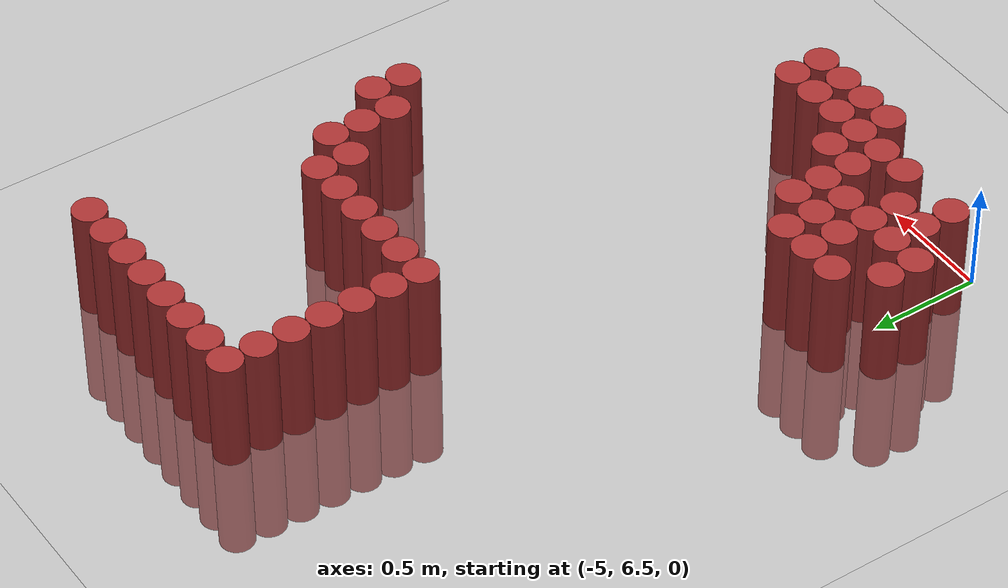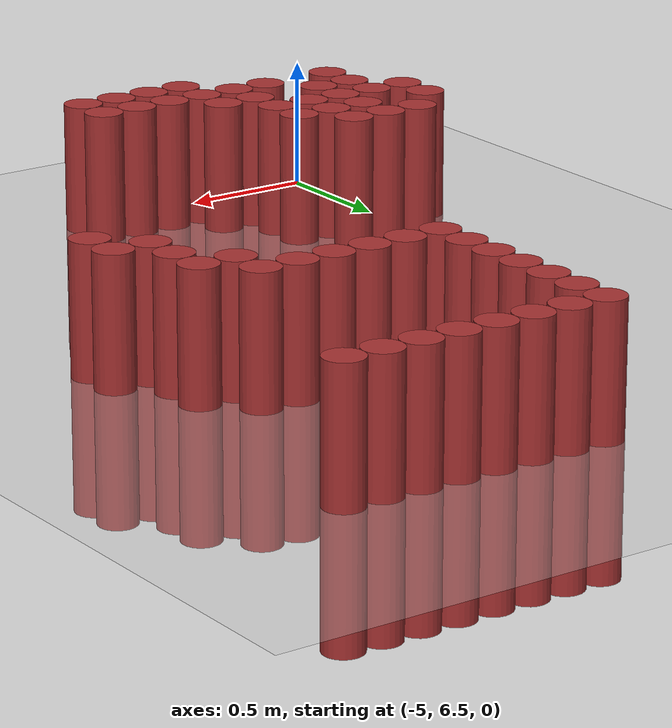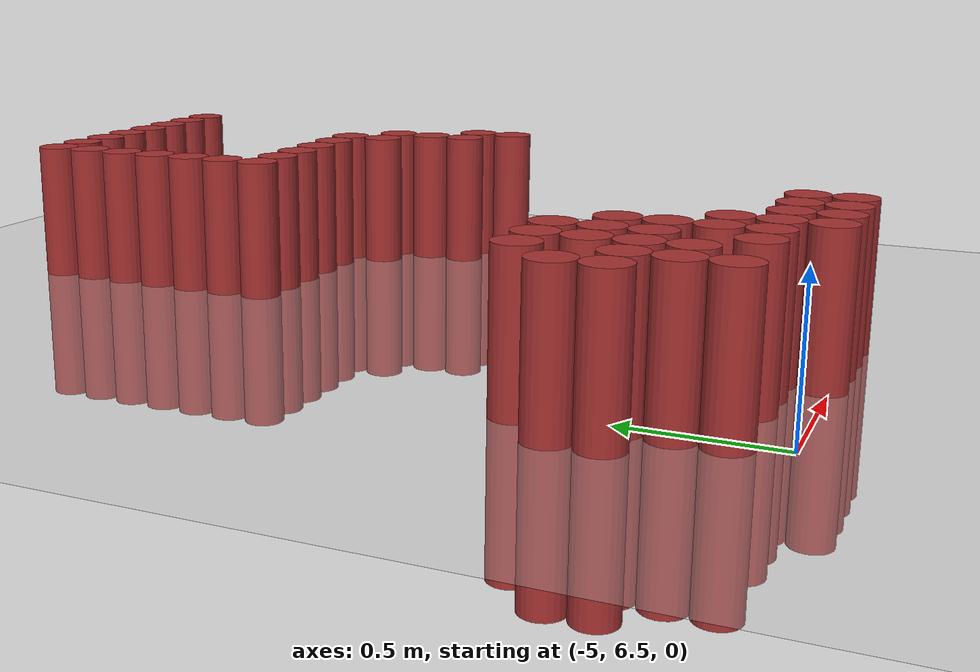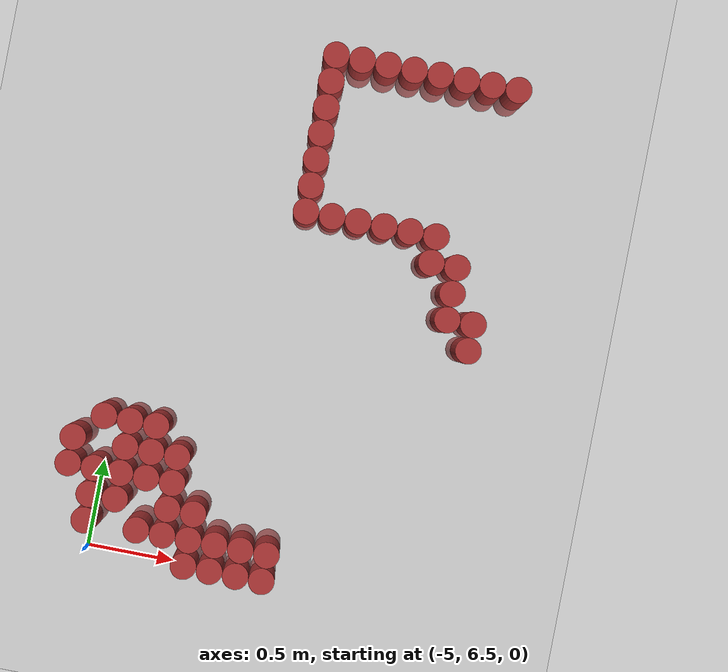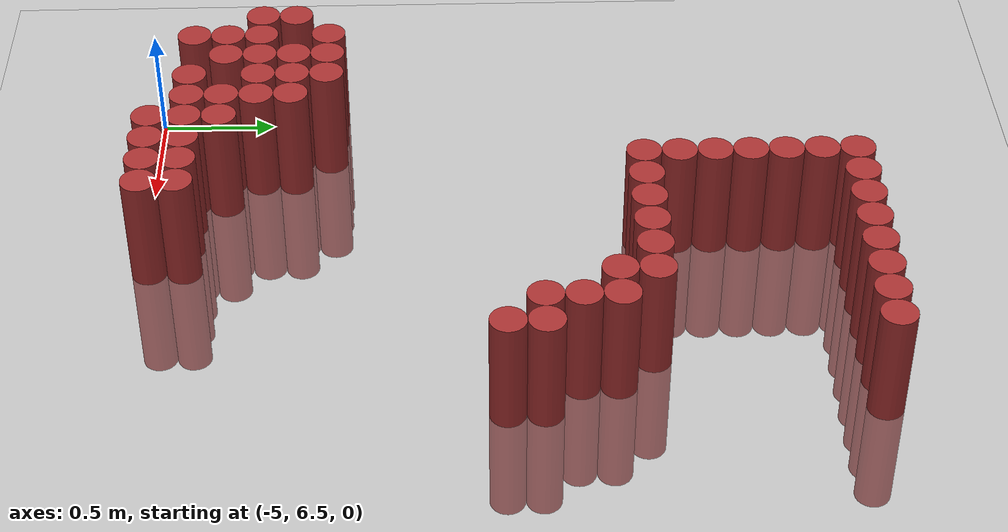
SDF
<sdf version="1.6">
 <world name="default">
  <model name="ground_plane">
   <static>1</static>
   <link name="link">
    <collision name="collision">
     <geometry><plane><normal>0 0 1</normal><size>100 100</size></plane></geometry>
     <surface><friction><ode><mu>100</mu><mu2>50</mu2></ode></friction></surface>
    </collision>
    <visual name="visual">
     <cast_shadows>0</cast_shadows>
     <geometry><plane><normal>0 0 1</normal><size>100 100</size></plane></geometry>
     <material>
      <script><uri>file://media/materials/scripts/gazebo.material</uri><name>Gazebo/Grey</name></script>
     </material>
    </visual>
   </link>
  </model>
  <model name="unit_cylinder_280">
   <static>1</static>
   <pose>-5.175000 6.975000 0.000000 0.000000 0.000000 0.000000</pose>
   <link name="link">
    <inertial>
     <mass>1</mass>
     <inertia><ixx>0.145833</ixx><ixy>0</ixy><ixz>0</ixz><iyy>0.145833</iyy><iyz>0</iyz><izz>0.125</izz></inertia>
    </inertial>
    <collision name="collision">
     <geometry><cylinder><radius>0.075000</radius><length>1</length></cylinder></geometry>
    </collision>
    <visual name="visual">
     <geometry><cylinder><radius>0.075000</radius><length>1</length></cylinder></geometry>
     <material>
      <ambient>0.648000 0.192000 0.192000 1</ambient>
      <diffuse>0.648000 0.192000 0.192000 1</diffuse>
     </material>
     <material>
      <script><name>Gazebo/Grey</name><uri>file://media/materials/scripts/gazebo.material</uri></script>
     </material>
    </visual>
   </link>
  </model>
  <model name="unit_cylinder_281">
   <static>1</static>
   <pose>-5.175000 7.125000 0.000000 0.000000 0.000000 0.000000</pose>
   <link name="link">
    <inertial>
     <mass>1</mass>
     <inertia><ixx>0.145833</ixx><ixy>0</ixy><ixz>0</ixz><iyy>0.145833</iyy><iyz>0</iyz><izz>0.125</izz></inertia>
    </inertial>
    <collision name="collision">
     <geometry><cylinder><radius>0.075000</radius><length>1</length></cylinder></geometry>
    </collision>
    <visual name="visual">
     <geometry><cylinder><radius>0.075000</radius><length>1</length></cylinder></geometry>
     <material>
      <ambient>0.648000 0.192000 0.192000 1</ambient>
      <diffuse>0.648000 0.192000 0.192000 1</diffuse>
     </material>
     <material>
      <script><name>Gazebo/Grey</name><uri>file://media/materials/scripts/gazebo.material</uri></script>
     </material>
    </visual>
   </link>
  </model>
  <model name="unit_cylinder_282">
   <static>1</static>
   <pose>-5.025000 6.675000 0.000000 0.000000 0.000000 0.000000</pose>
   <link name="link">
    <inertial>
     <mass>1</mass>
     <inertia><ixx>0.145833</ixx><ixy>0</ixy><ixz>0</ixz><iyy>0.145833</iyy><iyz>0</iyz><izz>0.125</izz></inertia>
    </inertial>
    <collision name="collision">
     <geometry><cylinder><radius>0.075000</radius><length>1</length></cylinder></geometry>
    </collision>
    <visual name="visual">
     <geometry><cylinder><radius>0.075000</radius><length>1</length></cylinder></geometry>
     <material>
      <ambient>0.648000 0.192000 0.192000 1</ambient>
      <diffuse>0.648000 0.192000 0.192000 1</diffuse>
     </material>
     <material>
      <script><name>Gazebo/Grey</name><uri>file://media/materials/scripts/gazebo.material</uri></script>
     </material>
    </visual>
   </link>
  </model>
  <model name="unit_cylinder_283">
   <static>1</static>
   <pose>-5.025000 6.825000 0.000000 0.000000 0.000000 0.000000</pose>
   <link name="link">
    <inertial>
     <mass>1</mass>
     <inertia><ixx>0.145833</ixx><ixy>0</ixy><ixz>0</ixz><iyy>0.145833</iyy><iyz>0</iyz><izz>0.125</izz></inertia>
    </inertial>
    <collision name="collision">
     <geometry><cylinder><radius>0.075000</radius><length>1</length></cylinder></geometry>
    </collision>
    <visual name="visual">
     <geometry><cylinder><radius>0.075000</radius><length>1</length></cylinder></geometry>
     <material>
      <ambient>0.648000 0.192000 0.192000 1</ambient>
      <diffuse>0.648000 0.192000 0.192000 1</diffuse>
     </material>
     <material>
      <script><name>Gazebo/Grey</name><uri>file://media/materials/scripts/gazebo.material</uri></script>
     </material>
    </visual>
   </link>
  </model>
  <model name="unit_cylinder_284">
   <static>1</static>
   <pose>-5.025000 6.975000 0.000000 0.000000 0.000000 0.000000</pose>
   <link name="link">
    <inertial>
     <mass>1</mass>
     <inertia><ixx>0.145833</ixx><ixy>0</ixy><ixz>0</ixz><iyy>0.145833</iyy><iyz>0</iyz><izz>0.125</izz></inertia>
    </inertial>
    <collision name="collision">
     <geometry><cylinder><radius>0.075000</radius><length>1</length></cylinder></geometry>
    </collision>
    <visual name="visual">
     <geometry><cylinder><radius>0.075000</radius><length>1</length></cylinder></geometry>
     <material>
      <ambient>0.648000 0.192000 0.192000 1</ambient>
      <diffuse>0.648000 0.192000 0.192000 1</diffuse>
     </material>
     <material>
      <script><name>Gazebo/Grey</name><uri>file://media/materials/scripts/gazebo.material</uri></script>
     </material>
    </visual>
   </link>
  </model>
  <model name="unit_cylinder_285">
   <static>1</static>
   <pose>-5.025000 7.275000 0.000000 0.000000 0.000000 0.000000</pose>
   <link name="link">
    <inertial>
     <mass>1</mass>
     <inertia><ixx>0.145833</ixx><ixy>0</ixy><ixz>0</ixz><iyy>0.145833</iyy><iyz>0</iyz><izz>0.125</izz></inertia>
    </inertial>
    <collision name="collision">
     <geometry><cylinder><radius>0.075000</radius><length>1</length></cylinder></geometry>
    </collision>
    <visual name="visual">
     <geometry><cylinder><radius>0.075000</radius><length>1</length></cylinder></geometry>
     <material>
      <ambient>0.648000 0.192000 0.192000 1</ambient>
      <diffuse>0.648000 0.192000 0.192000 1</diffuse>
     </material>
     <material>
      <script><name>Gazebo/Grey</name><uri>file://media/materials/scripts/gazebo.material</uri></script>
     </material>
    </visual>
   </link>
  </model>
  <model name="unit_cylinder_286">
   <static>1</static>
   <pose>-4.875000 6.825000 0.000000 0.000000 0.000000 0.000000</pose>
   <link name="link">
    <inertial>
     <mass>1</mass>
     <inertia><ixx>0.145833</ixx><ixy>0</ixy><ixz>0</ixz><iyy>0.145833</iyy><iyz>0</iyz><izz>0.125</izz></inertia>
    </inertial>
    <collision name="collision">
     <geometry><cylinder><radius>0.075000</radius><length>1</length></cylinder></geometry>
    </collision>
    <visual name="visual">
     <geometry><cylinder><radius>0.075000</radius><length>1</length></cylinder></geometry>
     <material>
      <ambient>0.648000 0.192000 0.192000 1</ambient>
      <diffuse>0.648000 0.192000 0.192000 1</diffuse>
     </material>
     <material>
      <script><name>Gazebo/Grey</name><uri>file://media/materials/scripts/gazebo.material</uri></script>
     </material>
    </visual>
   </link>
  </model>
  <model name="unit_cylinder_287">
   <static>1</static>
   <pose>-4.875000 6.975000 0.000000 0.000000 0.000000 0.000000</pose>
   <link name="link">
    <inertial>
     <mass>1</mass>
     <inertia><ixx>0.145833</ixx><ixy>0</ixy><ixz>0</ixz><iyy>0.145833</iyy><iyz>0</iyz><izz>0.125</izz></inertia>
    </inertial>
    <collision name="collision">
     <geometry><cylinder><radius>0.075000</radius><length>1</length></cylinder></geometry>
    </collision>
    <visual name="visual">
     <geometry><cylinder><radius>0.075000</radius><length>1</length></cylinder></geometry>
     <material>
      <ambient>0.648000 0.192000 0.192000 1</ambient>
      <diffuse>0.648000 0.192000 0.192000 1</diffuse>
     </material>
     <material>
      <script><name>Gazebo/Grey</name><uri>file://media/materials/scripts/gazebo.material</uri></script>
     </material>
    </visual>
   </link>
  </model>
  <model name="unit_cylinder_288">
   <static>1</static>
   <pose>-4.875000 7.125000 0.000000 0.000000 0.000000 0.000000</pose>
   <link name="link">
    <inertial>
     <mass>1</mass>
     <inertia><ixx>0.145833</ixx><ixy>0</ixy><ixz>0</ixz><iyy>0.145833</iyy><iyz>0</iyz><izz>0.125</izz></inertia>
    </inertial>
    <collision name="collision">
     <geometry><cylinder><radius>0.075000</radius><length>1</length></cylinder></geometry>
    </collision>
    <visual name="visual">
     <geometry><cylinder><radius>0.075000</radius><length>1</length></cylinder></geometry>
     <material>
      <ambient>0.648000 0.192000 0.192000 1</ambient>
      <diffuse>0.648000 0.192000 0.192000 1</diffuse>
     </material>
     <material>
      <script><name>Gazebo/Grey</name><uri>file://media/materials/scripts/gazebo.material</uri></script>
     </material>
    </visual>
   </link>
  </model>
  <model name="unit_cylinder_289">
   <static>1</static>
   <pose>-4.875000 7.275000 0.000000 0.000000 0.000000 0.000000</pose>
   <link name="link">
    <inertial>
     <mass>1</mass>
     <inertia><ixx>0.145833</ixx><ixy>0</ixy><ixz>0</ixz><iyy>0.145833</iyy><iyz>0</iyz><izz>0.125</izz></inertia>
    </inertial>
    <collision name="collision">
     <geometry><cylinder><radius>0.075000</radius><length>1</length></cylinder></geometry>
    </collision>
    <visual name="visual">
     <geometry><cylinder><radius>0.075000</radius><length>1</length></cylinder></geometry>
     <material>
      <ambient>0.648000 0.192000 0.192000 1</ambient>
      <diffuse>0.648000 0.192000 0.192000 1</diffuse>
     </material>
     <material>
      <script><name>Gazebo/Grey</name><uri>file://media/materials/scripts/gazebo.material</uri></script>
     </material>
    </visual>
   </link>
  </model>
  <model name="unit_cylinder_290">
   <static>1</static>
   <pose>-4.725000 6.675000 0.000000 0.000000 0.000000 0.000000</pose>
   <link name="link">
    <inertial>
     <mass>1</mass>
     <inertia><ixx>0.145833</ixx><ixy>0</ixy><ixz>0</ixz><iyy>0.145833</iyy><iyz>0</iyz><izz>0.125</izz></inertia>
    </inertial>
    <collision name="collision">
     <geometry><cylinder><radius>0.075000</radius><length>1</length></cylinder></geometry>
    </collision>
    <visual name="visual">
     <geometry><cylinder><radius>0.075000</radius><length>1</length></cylinder></geometry>
     <material>
      <ambient>0.648000 0.192000 0.192000 1</ambient>
      <diffuse>0.648000 0.192000 0.192000 1</diffuse>
     </material>
     <material>
      <script><name>Gazebo/Grey</name><uri>file://media/materials/scripts/gazebo.material</uri></script>
     </material>
    </visual>
   </link>
  </model>
  <model name="unit_cylinder_291">
   <static>1</static>
   <pose>-4.725000 6.975000 0.000000 0.000000 0.000000 0.000000</pose>
   <link name="link">
    <inertial>
     <mass>1</mass>
     <inertia><ixx>0.145833</ixx><ixy>0</ixy><ixz>0</ixz><iyy>0.145833</iyy><iyz>0</iyz><izz>0.125</izz></inertia>
    </inertial>
    <collision name="collision">
     <geometry><cylinder><radius>0.075000</radius><length>1</length></cylinder></geometry>
    </collision>
    <visual name="visual">
     <geometry><cylinder><radius>0.075000</radius><length>1</length></cylinder></geometry>
     <material>
      <ambient>0.648000 0.192000 0.192000 1</ambient>
      <diffuse>0.648000 0.192000 0.192000 1</diffuse>
     </material>
     <material>
      <script><name>Gazebo/Grey</name><uri>file://media/materials/scripts/gazebo.material</uri></script>
     </material>
    </visual>
   </link>
  </model>
  <model name="unit_cylinder_292">
   <static>1</static>
   <pose>-4.725000 7.125000 0.000000 0.000000 0.000000 0.000000</pose>
   <link name="link">
    <inertial>
     <mass>1</mass>
     <inertia><ixx>0.145833</ixx><ixy>0</ixy><ixz>0</ixz><iyy>0.145833</iyy><iyz>0</iyz><izz>0.125</izz></inertia>
    </inertial>
    <collision name="collision">
     <geometry><cylinder><radius>0.075000</radius><length>1</length></cylinder></geometry>
    </collision>
    <visual name="visual">
     <geometry><cylinder><radius>0.075000</radius><length>1</length></cylinder></geometry>
     <material>
      <ambient>0.648000 0.192000 0.192000 1</ambient>
      <diffuse>0.648000 0.192000 0.192000 1</diffuse>
     </material>
     <material>
      <script><name>Gazebo/Grey</name><uri>file://media/materials/scripts/gazebo.material</uri></script>
     </material>
    </visual>
   </link>
  </model>
  <model name="unit_cylinder_293">
   <static>1</static>
   <pose>-4.725000 7.275000 0.000000 0.000000 0.000000 0.000000</pose>
   <link name="link">
    <inertial>
     <mass>1</mass>
     <inertia><ixx>0.145833</ixx><ixy>0</ixy><ixz>0</ixz><iyy>0.145833</iyy><iyz>0</iyz><izz>0.125</izz></inertia>
    </inertial>
    <collision name="collision">
     <geometry><cylinder><radius>0.075000</radius><length>1</length></cylinder></geometry>
    </collision>
    <visual name="visual">
     <geometry><cylinder><radius>0.075000</radius><length>1</length></cylinder></geometry>
     <material>
      <ambient>0.648000 0.192000 0.192000 1</ambient>
      <diffuse>0.648000 0.192000 0.192000 1</diffuse>
     </material>
     <material>
      <script><name>Gazebo/Grey</name><uri>file://media/materials/scripts/gazebo.material</uri></script>
     </material>
    </visual>
   </link>
  </model>
  <model name="unit_cylinder_294">
   <static>1</static>
   <pose>-4.575000 6.675000 0.000000 0.000000 0.000000 0.000000</pose>
   <link name="link">
    <inertial>
     <mass>1</mass>
     <inertia><ixx>0.145833</ixx><ixy>0</ixy><ixz>0</ixz><iyy>0.145833</iyy><iyz>0</iyz><izz>0.125</izz></inertia>
    </inertial>
    <collision name="collision">
     <geometry><cylinder><radius>0.075000</radius><length>1</length></cylinder></geometry>
    </collision>
    <visual name="visual">
     <geometry><cylinder><radius>0.075000</radius><length>1</length></cylinder></geometry>
     <material>
      <ambient>0.648000 0.192000 0.192000 1</ambient>
      <diffuse>0.648000 0.192000 0.192000 1</diffuse>
     </material>
     <material>
      <script><name>Gazebo/Grey</name><uri>file://media/materials/scripts/gazebo.material</uri></script>
     </material>
    </visual>
   </link>
  </model>
  <model name="unit_cylinder_295">
   <static>1</static>
   <pose>-4.575000 6.825000 0.000000 0.000000 0.000000 0.000000</pose>
   <link name="link">
    <inertial>
     <mass>1</mass>
     <inertia><ixx>0.145833</ixx><ixy>0</ixy><ixz>0</ixz><iyy>0.145833</iyy><iyz>0</iyz><izz>0.125</izz></inertia>
    </inertial>
    <collision name="collision">
     <geometry><cylinder><radius>0.075000</radius><length>1</length></cylinder></geometry>
    </collision>
    <visual name="visual">
     <geometry><cylinder><radius>0.075000</radius><length>1</length></cylinder></geometry>
     <material>
      <ambient>0.648000 0.192000 0.192000 1</ambient>
      <diffuse>0.648000 0.192000 0.192000 1</diffuse>
     </material>
     <material>
      <script><name>Gazebo/Grey</name><uri>file://media/materials/scripts/gazebo.material</uri></script>
     </material>
    </visual>
   </link>
  </model>
  <model name="unit_cylinder_296">
   <static>1</static>
   <pose>-4.575000 6.975000 0.000000 0.000000 0.000000 0.000000</pose>
   <link name="link">
    <inertial>
     <mass>1</mass>
     <inertia><ixx>0.145833</ixx><ixy>0</ixy><ixz>0</ixz><iyy>0.145833</iyy><iyz>0</iyz><izz>0.125</izz></inertia>
    </inertial>
    <collision name="collision">
     <geometry><cylinder><radius>0.075000</radius><length>1</length></cylinder></geometry>
    </collision>
    <visual name="visual">
     <geometry><cylinder><radius>0.075000</radius><length>1</length></cylinder></geometry>
     <material>
      <ambient>0.648000 0.192000 0.192000 1</ambient>
      <diffuse>0.648000 0.192000 0.192000 1</diffuse>
     </material>
     <material>
      <script><name>Gazebo/Grey</name><uri>file://media/materials/scripts/gazebo.material</uri></script>
     </material>
    </visual>
   </link>
  </model>
  <model name="unit_cylinder_297">
   <static>1</static>
   <pose>-4.575000 7.125000 0.000000 0.000000 0.000000 0.000000</pose>
   <link name="link">
    <inertial>
     <mass>1</mass>
     <inertia><ixx>0.145833</ixx><ixy>0</ixy><ixz>0</ixz><iyy>0.145833</iyy><iyz>0</iyz><izz>0.125</izz></inertia>
    </inertial>
    <collision name="collision">
     <geometry><cylinder><radius>0.075000</radius><length>1</length></cylinder></geometry>
    </collision>
    <visual name="visual">
     <geometry><cylinder><radius>0.075000</radius><length>1</length></cylinder></geometry>
     <material>
      <ambient>0.648000 0.192000 0.192000 1</ambient>
      <diffuse>0.648000 0.192000 0.192000 1</diffuse>
     </material>
     <material>
      <script><name>Gazebo/Grey</name><uri>file://media/materials/scripts/gazebo.material</uri></script>
     </material>
    </visual>
   </link>
  </model>
  <model name="unit_cylinder_298">
   <static>1</static>
   <pose>-4.425000 6.525000 0.000000 0.000000 0.000000 0.000000</pose>
   <link name="link">
    <inertial>
     <mass>1</mass>
     <inertia><ixx>0.145833</ixx><ixy>0</ixy><ixz>0</ixz><iyy>0.145833</iyy><iyz>0</iyz><izz>0.125</izz></inertia>
    </inertial>
    <collision name="collision">
     <geometry><cylinder><radius>0.075000</radius><length>1</length></cylinder></geometry>
    </collision>
    <visual name="visual">
     <geometry><cylinder><radius>0.075000</radius><length>1</length></cylinder></geometry>
     <material>
      <ambient>0.648000 0.192000 0.192000 1</ambient>
      <diffuse>0.648000 0.192000 0.192000 1</diffuse>
     </material>
     <material>
      <script><name>Gazebo/Grey</name><uri>file://media/materials/scripts/gazebo.material</uri></script>
     </material>
    </visual>
   </link>
  </model>
  <model name="unit_cylinder_299">
   <static>1</static>
   <pose>-4.425000 6.675000 0.000000 0.000000 0.000000 0.000000</pose>
   <link name="link">
    <inertial>
     <mass>1</mass>
     <inertia><ixx>0.145833</ixx><ixy>0</ixy><ixz>0</ixz><iyy>0.145833</iyy><iyz>0</iyz><izz>0.125</izz></inertia>
    </inertial>
    <collision name="collision">
     <geometry><cylinder><radius>0.075000</radius><length>1</length></cylinder></geometry>
    </collision>
    <visual name="visual">
     <geometry><cylinder><radius>0.075000</radius><length>1</length></cylinder></geometry>
     <material>
      <ambient>0.648000 0.192000 0.192000 1</ambient>
      <diffuse>0.648000 0.192000 0.192000 1</diffuse>
     </material>
     <material>
      <script><name>Gazebo/Grey</name><uri>file://media/materials/scripts/gazebo.material</uri></script>
     </material>
    </visual>
   </link>
  </model>
  <model name="unit_cylinder_300">
   <static>1</static>
   <pose>-4.425000 6.825000 0.000000 0.000000 0.000000 0.000000</pose>
   <link name="link">
    <inertial>
     <mass>1</mass>
     <inertia><ixx>0.145833</ixx><ixy>0</ixy><ixz>0</ixz><iyy>0.145833</iyy><iyz>0</iyz><izz>0.125</izz></inertia>
    </inertial>
    <collision name="collision">
     <geometry><cylinder><radius>0.075000</radius><length>1</length></cylinder></geometry>
    </collision>
    <visual name="visual">
     <geometry><cylinder><radius>0.075000</radius><length>1</length></cylinder></geometry>
     <material>
      <ambient>0.648000 0.192000 0.192000 1</ambient>
      <diffuse>0.648000 0.192000 0.192000 1</diffuse>
     </material>
     <material>
      <script><name>Gazebo/Grey</name><uri>file://media/materials/scripts/gazebo.material</uri></script>
     </material>
    </visual>
   </link>
  </model>
  <model name="unit_cylinder_301">
   <static>1</static>
   <pose>-4.275000 6.525000 0.000000 0.000000 0.000000 0.000000</pose>
   <link name="link">
    <inertial>
     <mass>1</mass>
     <inertia><ixx>0.145833</ixx><ixy>0</ixy><ixz>0</ixz><iyy>0.145833</iyy><iyz>0</iyz><izz>0.125</izz></inertia>
    </inertial>
    <collision name="collision">
     <geometry><cylinder><radius>0.075000</radius><length>1</length></cylinder></geometry>
    </collision>
    <visual name="visual">
     <geometry><cylinder><radius>0.075000</radius><length>1</length></cylinder></geometry>
     <material>
      <ambient>0.648000 0.192000 0.192000 1</ambient>
      <diffuse>0.648000 0.192000 0.192000 1</diffuse>
     </material>
     <material>
      <script><name>Gazebo/Grey</name><uri>file://media/materials/scripts/gazebo.material</uri></script>
     </material>
    </visual>
   </link>
  </model>
  <model name="unit_cylinder_302">
   <static>1</static>
   <pose>-4.275000 6.675000 0.000000 0.000000 0.000000 0.000000</pose>
   <link name="link">
    <inertial>
     <mass>1</mass>
     <inertia><ixx>0.145833</ixx><ixy>0</ixy><ixz>0</ixz><iyy>0.145833</iyy><iyz>0</iyz><izz>0.125</izz></inertia>
    </inertial>
    <collision name="collision">
     <geometry><cylinder><radius>0.075000</radius><length>1</length></cylinder></geometry>
    </collision>
    <visual name="visual">
     <geometry><cylinder><radius>0.075000</radius><length>1</length></cylinder></geometry>
     <material>
      <ambient>0.648000 0.192000 0.192000 1</ambient>
      <diffuse>0.648000 0.192000 0.192000 1</diffuse>
     </material>
     <material>
      <script><name>Gazebo/Grey</name><uri>file://media/materials/scripts/gazebo.material</uri></script>
     </material>
    </visual>
   </link>
  </model>
  <model name="unit_cylinder_304">
   <static>1</static>
   <pose>-4.125000 6.525000 0.000000 0.000000 0.000000 0.000000</pose>
   <link name="link">
    <inertial>
     <mass>1</mass>
     <inertia><ixx>0.145833</ixx><ixy>0</ixy><ixz>0</ixz><iyy>0.145833</iyy><iyz>0</iyz><izz>0.125</izz></inertia>
    </inertial>
    <collision name="collision">
     <geometry><cylinder><radius>0.075000</radius><length>1</length></cylinder></geometry>
    </collision>
    <visual name="visual">
     <geometry><cylinder><radius>0.075000</radius><length>1</length></cylinder></geometry>
     <material>
      <ambient>0.648000 0.192000 0.192000 1</ambient>
      <diffuse>0.648000 0.192000 0.192000 1</diffuse>
     </material>
     <material>
      <script><name>Gazebo/Grey</name><uri>file://media/materials/scripts/gazebo.material</uri></script>
     </material>
    </visual>
   </link>
  </model>
  <model name="unit_cylinder_305">
   <static>1</static>
   <pose>-4.125000 6.675000 0.000000 0.000000 0.000000 0.000000</pose>
   <link name="link">
    <inertial>
     <mass>1</mass>
     <inertia><ixx>0.145833</ixx><ixy>0</ixy><ixz>0</ixz><iyy>0.145833</iyy><iyz>0</iyz><izz>0.125</izz></inertia>
    </inertial>
    <collision name="collision">
     <geometry><cylinder><radius>0.075000</radius><length>1</length></cylinder></geometry>
    </collision>
    <visual name="visual">
     <geometry><cylinder><radius>0.075000</radius><length>1</length></cylinder></geometry>
     <material>
      <ambient>0.648000 0.192000 0.192000 1</ambient>
      <diffuse>0.648000 0.192000 0.192000 1</diffuse>
     </material>
     <material>
      <script><name>Gazebo/Grey</name><uri>file://media/materials/scripts/gazebo.material</uri></script>
     </material>
    </visual>
   </link>
  </model>
  <model name="unit_cylinder_306">
   <static>1</static>
   <pose>-4.125000 8.625000 0.000000 0.000000 0.000000 0.000000</pose>
   <link name="link">
    <inertial>
     <mass>1</mass>
     <inertia><ixx>0.145833</ixx><ixy>0</ixy><ixz>0</ixz><iyy>0.145833</iyy><iyz>0</iyz><izz>0.125</izz></inertia>
    </inertial>
    <collision name="collision">
     <geometry><cylinder><radius>0.075000</radius><length>1</length></cylinder></geometry>
    </collision>
    <visual name="visual">
     <geometry><cylinder><radius>0.075000</radius><length>1</length></cylinder></geometry>
     <material>
      <ambient>0.648000 0.192000 0.192000 1</ambient>
      <diffuse>0.648000 0.192000 0.192000 1</diffuse>
     </material>
     <material>
      <script><name>Gazebo/Grey</name><uri>file://media/materials/scripts/gazebo.material</uri></script>
     </material>
    </visual>
   </link>
  </model>
  <model name="unit_cylinder_307">
   <static>1</static>
   <pose>-4.125000 8.775000 0.000000 0.000000 0.000000 0.000000</pose>
   <link name="link">
    <inertial>
     <mass>1</mass>
     <inertia><ixx>0.145833</ixx><ixy>0</ixy><ixz>0</ixz><iyy>0.145833</iyy><iyz>0</iyz><izz>0.125</izz></inertia>
    </inertial>
    <collision name="collision">
     <geometry><cylinder><radius>0.075000</radius><length>1</length></cylinder></geometry>
    </collision>
    <visual name="visual">
     <geometry><cylinder><radius>0.075000</radius><length>1</length></cylinder></geometry>
     <material>
      <ambient>0.648000 0.192000 0.192000 1</ambient>
      <diffuse>0.648000 0.192000 0.192000 1</diffuse>
     </material>
     <material>
      <script><name>Gazebo/Grey</name><uri>file://media/materials/scripts/gazebo.material</uri></script>
     </material>
    </visual>
   </link>
  </model>
  <model name="unit_cylinder_308">
   <static>1</static>
   <pose>-4.125000 8.925000 0.000000 0.000000 0.000000 0.000000</pose>
   <link name="link">
    <inertial>
     <mass>1</mass>
     <inertia><ixx>0.145833</ixx><ixy>0</ixy><ixz>0</ixz><iyy>0.145833</iyy><iyz>0</iyz><izz>0.125</izz></inertia>
    </inertial>
    <collision name="collision">
     <geometry><cylinder><radius>0.075000</radius><length>1</length></cylinder></geometry>
    </collision>
    <visual name="visual">
     <geometry><cylinder><radius>0.075000</radius><length>1</length></cylinder></geometry>
     <material>
      <ambient>0.648000 0.192000 0.192000 1</ambient>
      <diffuse>0.648000 0.192000 0.192000 1</diffuse>
     </material>
     <material>
      <script><name>Gazebo/Grey</name><uri>file://media/materials/scripts/gazebo.material</uri></script>
     </material>
    </visual>
   </link>
  </model>
  <model name="unit_cylinder_309">
   <static>1</static>
   <pose>-4.125000 9.075000 0.000000 0.000000 0.000000 0.000000</pose>
   <link name="link">
    <inertial>
     <mass>1</mass>
     <inertia><ixx>0.145833</ixx><ixy>0</ixy><ixz>0</ixz><iyy>0.145833</iyy><iyz>0</iyz><izz>0.125</izz></inertia>
    </inertial>
    <collision name="collision">
     <geometry><cylinder><radius>0.075000</radius><length>1</length></cylinder></geometry>
    </collision>
    <visual name="visual">
     <geometry><cylinder><radius>0.075000</radius><length>1</length></cylinder></geometry>
     <material>
      <ambient>0.648000 0.192000 0.192000 1</ambient>
      <diffuse>0.648000 0.192000 0.192000 1</diffuse>
     </material>
     <material>
      <script><name>Gazebo/Grey</name><uri>file://media/materials/scripts/gazebo.material</uri></script>
     </material>
    </visual>
   </link>
  </model>
  <model name="unit_cylinder_310">
   <static>1</static>
   <pose>-4.125000 9.225000 0.000000 0.000000 0.000000 0.000000</pose>
   <link name="link">
    <inertial>
     <mass>1</mass>
     <inertia><ixx>0.145833</ixx><ixy>0</ixy><ixz>0</ixz><iyy>0.145833</iyy><iyz>0</iyz><izz>0.125</izz></inertia>
    </inertial>
    <collision name="collision">
     <geometry><cylinder><radius>0.075000</radius><length>1</length></cylinder></geometry>
    </collision>
    <visual name="visual">
     <geometry><cylinder><radius>0.075000</radius><length>1</length></cylinder></geometry>
     <material>
      <ambient>0.648000 0.192000 0.192000 1</ambient>
      <diffuse>0.648000 0.192000 0.192000 1</diffuse>
     </material>
     <material>
      <script><name>Gazebo/Grey</name><uri>file://media/materials/scripts/gazebo.material</uri></script>
     </material>
    </visual>
   </link>
  </model>
  <model name="unit_cylinder_311">
   <static>1</static>
   <pose>-4.125000 9.375000 0.000000 0.000000 0.000000 0.000000</pose>
   <link name="link">
    <inertial>
     <mass>1</mass>
     <inertia><ixx>0.145833</ixx><ixy>0</ixy><ixz>0</ixz><iyy>0.145833</iyy><iyz>0</iyz><izz>0.125</izz></inertia>
    </inertial>
    <collision name="collision">
     <geometry><cylinder><radius>0.075000</radius><length>1</length></cylinder></geometry>
    </collision>
    <visual name="visual">
     <geometry><cylinder><radius>0.075000</radius><length>1</length></cylinder></geometry>
     <material>
      <ambient>0.648000 0.192000 0.192000 1</ambient>
      <diffuse>0.648000 0.192000 0.192000 1</diffuse>
     </material>
     <material>
      <script><name>Gazebo/Grey</name><uri>file://media/materials/scripts/gazebo.material</uri></script>
     </material>
    </visual>
   </link>
  </model>
  <model name="unit_cylinder_312">
   <static>1</static>
   <pose>-4.125000 9.525000 0.000000 0.000000 0.000000 0.000000</pose>
   <link name="link">
    <inertial>
     <mass>1</mass>
     <inertia><ixx>0.145833</ixx><ixy>0</ixy><ixz>0</ixz><iyy>0.145833</iyy><iyz>0</iyz><izz>0.125</izz></inertia>
    </inertial>
    <collision name="collision">
     <geometry><cylinder><radius>0.075000</radius><length>1</length></cylinder></geometry>
    </collision>
    <visual name="visual">
     <geometry><cylinder><radius>0.075000</radius><length>1</length></cylinder></geometry>
     <material>
      <ambient>0.648000 0.192000 0.192000 1</ambient>
      <diffuse>0.648000 0.192000 0.192000 1</diffuse>
     </material>
     <material>
      <script><name>Gazebo/Grey</name><uri>file://media/materials/scripts/gazebo.material</uri></script>
     </material>
    </visual>
   </link>
  </model>
  <model name="unit_cylinder_313">
   <static>1</static>
   <pose>-3.975000 6.525000 0.000000 0.000000 0.000000 0.000000</pose>
   <link name="link">
    <inertial>
     <mass>1</mass>
     <inertia><ixx>0.145833</ixx><ixy>0</ixy><ixz>0</ixz><iyy>0.145833</iyy><iyz>0</iyz><izz>0.125</izz></inertia>
    </inertial>
    <collision name="collision">
     <geometry><cylinder><radius>0.075000</radius><length>1</length></cylinder></geometry>
    </collision>
    <visual name="visual">
     <geometry><cylinder><radius>0.075000</radius><length>1</length></cylinder></geometry>
     <material>
      <ambient>0.648000 0.192000 0.192000 1</ambient>
      <diffuse>0.648000 0.192000 0.192000 1</diffuse>
     </material>
     <material>
      <script><name>Gazebo/Grey</name><uri>file://media/materials/scripts/gazebo.material</uri></script>
     </material>
    </visual>
   </link>
  </model>
  <model name="unit_cylinder_314">
   <static>1</static>
   <pose>-3.975000 6.675000 0.000000 0.000000 0.000000 0.000000</pose>
   <link name="link">
    <inertial>
     <mass>1</mass>
     <inertia><ixx>0.145833</ixx><ixy>0</ixy><ixz>0</ixz><iyy>0.145833</iyy><iyz>0</iyz><izz>0.125</izz></inertia>
    </inertial>
    <collision name="collision">
     <geometry><cylinder><radius>0.075000</radius><length>1</length></cylinder></geometry>
    </collision>
    <visual name="visual">
     <geometry><cylinder><radius>0.075000</radius><length>1</length></cylinder></geometry>
     <material>
      <ambient>0.648000 0.192000 0.192000 1</ambient>
      <diffuse>0.648000 0.192000 0.192000 1</diffuse>
     </material>
     <material>
      <script><name>Gazebo/Grey</name><uri>file://media/materials/scripts/gazebo.material</uri></script>
     </material>
    </visual>
   </link>
  </model>
  <model name="unit_cylinder_315">
   <static>1</static>
   <pose>-3.975000 8.625000 0.000000 0.000000 0.000000 0.000000</pose>
   <link name="link">
    <inertial>
     <mass>1</mass>
     <inertia><ixx>0.145833</ixx><ixy>0</ixy><ixz>0</ixz><iyy>0.145833</iyy><iyz>0</iyz><izz>0.125</izz></inertia>
    </inertial>
    <collision name="collision">
     <geometry><cylinder><radius>0.075000</radius><length>1</length></cylinder></geometry>
    </collision>
    <visual name="visual">
     <geometry><cylinder><radius>0.075000</radius><length>1</length></cylinder></geometry>
     <material>
      <ambient>0.648000 0.192000 0.192000 1</ambient>
      <diffuse>0.648000 0.192000 0.192000 1</diffuse>
     </material>
     <material>
      <script><name>Gazebo/Grey</name><uri>file://media/materials/scripts/gazebo.material</uri></script>
     </material>
    </visual>
   </link>
  </model>
  <model name="unit_cylinder_316">
   <static>1</static>
   <pose>-3.975000 9.525000 0.000000 0.000000 0.000000 0.000000</pose>
   <link name="link">
    <inertial>
     <mass>1</mass>
     <inertia><ixx>0.145833</ixx><ixy>0</ixy><ixz>0</ixz><iyy>0.145833</iyy><iyz>0</iyz><izz>0.125</izz></inertia>
    </inertial>
    <collision name="collision">
     <geometry><cylinder><radius>0.075000</radius><length>1</length></cylinder></geometry>
    </collision>
    <visual name="visual">
     <geometry><cylinder><radius>0.075000</radius><length>1</length></cylinder></geometry>
     <material>
      <ambient>0.648000 0.192000 0.192000 1</ambient>
      <diffuse>0.648000 0.192000 0.192000 1</diffuse>
     </material>
     <material>
      <script><name>Gazebo/Grey</name><uri>file://media/materials/scripts/gazebo.material</uri></script>
     </material>
    </visual>
   </link>
  </model>
  <model name="unit_cylinder_317">
   <static>1</static>
   <pose>-3.825000 8.625000 0.000000 0.000000 0.000000 0.000000</pose>
   <link name="link">
    <inertial>
     <mass>1</mass>
     <inertia><ixx>0.145833</ixx><ixy>0</ixy><ixz>0</ixz><iyy>0.145833</iyy><iyz>0</iyz><izz>0.125</izz></inertia>
    </inertial>
    <collision name="collision">
     <geometry><cylinder><radius>0.075000</radius><length>1</length></cylinder></geometry>
    </collision>
    <visual name="visual">
     <geometry><cylinder><radius>0.075000</radius><length>1</length></cylinder></geometry>
     <material>
      <ambient>0.648000 0.192000 0.192000 1</ambient>
      <diffuse>0.648000 0.192000 0.192000 1</diffuse>
     </material>
     <material>
      <script><name>Gazebo/Grey</name><uri>file://media/materials/scripts/gazebo.material</uri></script>
     </material>
    </visual>
   </link>
  </model>
  <model name="unit_cylinder_318">
   <static>1</static>
   <pose>-3.825000 9.525000 0.000000 0.000000 0.000000 0.000000</pose>
   <link name="link">
    <inertial>
     <mass>1</mass>
     <inertia><ixx>0.145833</ixx><ixy>0</ixy><ixz>0</ixz><iyy>0.145833</iyy><iyz>0</iyz><izz>0.125</izz></inertia>
    </inertial>
    <collision name="collision">
     <geometry><cylinder><radius>0.075000</radius><length>1</length></cylinder></geometry>
    </collision>
    <visual name="visual">
     <geometry><cylinder><radius>0.075000</radius><length>1</length></cylinder></geometry>
     <material>
      <ambient>0.648000 0.192000 0.192000 1</ambient>
      <diffuse>0.648000 0.192000 0.192000 1</diffuse>
     </material>
     <material>
      <script><name>Gazebo/Grey</name><uri>file://media/materials/scripts/gazebo.material</uri></script>
     </material>
    </visual>
   </link>
  </model>
  <model name="unit_cylinder_319">
   <static>1</static>
   <pose>-3.675000 8.625000 0.000000 0.000000 0.000000 0.000000</pose>
   <link name="link">
    <inertial>
     <mass>1</mass>
     <inertia><ixx>0.145833</ixx><ixy>0</ixy><ixz>0</ixz><iyy>0.145833</iyy><iyz>0</iyz><izz>0.125</izz></inertia>
    </inertial>
    <collision name="collision">
     <geometry><cylinder><radius>0.075000</radius><length>1</length></cylinder></geometry>
    </collision>
    <visual name="visual">
     <geometry><cylinder><radius>0.075000</radius><length>1</length></cylinder></geometry>
     <material>
      <ambient>0.648000 0.192000 0.192000 1</ambient>
      <diffuse>0.648000 0.192000 0.192000 1</diffuse>
     </material>
     <material>
      <script><name>Gazebo/Grey</name><uri>file://media/materials/scripts/gazebo.material</uri></script>
     </material>
    </visual>
   </link>
  </model>
  <model name="unit_cylinder_320">
   <static>1</static>
   <pose>-3.675000 9.525000 0.000000 0.000000 0.000000 0.000000</pose>
   <link name="link">
    <inertial>
     <mass>1</mass>
     <inertia><ixx>0.145833</ixx><ixy>0</ixy><ixz>0</ixz><iyy>0.145833</iyy><iyz>0</iyz><izz>0.125</izz></inertia>
    </inertial>
    <collision name="collision">
     <geometry><cylinder><radius>0.075000</radius><length>1</length></cylinder></geometry>
    </collision>
    <visual name="visual">
     <geometry><cylinder><radius>0.075000</radius><length>1</length></cylinder></geometry>
     <material>
      <ambient>0.648000 0.192000 0.192000 1</ambient>
      <diffuse>0.648000 0.192000 0.192000 1</diffuse>
     </material>
     <material>
      <script><name>Gazebo/Grey</name><uri>file://media/materials/scripts/gazebo.material</uri></script>
     </material>
    </visual>
   </link>
  </model>
  <model name="unit_cylinder_321">
   <static>1</static>
   <pose>-3.525000 8.625000 0.000000 0.000000 0.000000 0.000000</pose>
   <link name="link">
    <inertial>
     <mass>1</mass>
     <inertia><ixx>0.145833</ixx><ixy>0</ixy><ixz>0</ixz><iyy>0.145833</iyy><iyz>0</iyz><izz>0.125</izz></inertia>
    </inertial>
    <collision name="collision">
     <geometry><cylinder><radius>0.075000</radius><length>1</length></cylinder></geometry>
    </collision>
    <visual name="visual">
     <geometry><cylinder><radius>0.075000</radius><length>1</length></cylinder></geometry>
     <material>
      <ambient>0.648000 0.192000 0.192000 1</ambient>
      <diffuse>0.648000 0.192000 0.192000 1</diffuse>
     </material>
     <material>
      <script><name>Gazebo/Grey</name><uri>file://media/materials/scripts/gazebo.material</uri></script>
     </material>
    </visual>
   </link>
  </model>
  <model name="unit_cylinder_322">
   <static>1</static>
   <pose>-3.525000 9.525000 0.000000 0.000000 0.000000 0.000000</pose>
   <link name="link">
    <inertial>
     <mass>1</mass>
     <inertia><ixx>0.145833</ixx><ixy>0</ixy><ixz>0</ixz><iyy>0.145833</iyy><iyz>0</iyz><izz>0.125</izz></inertia>
    </inertial>
    <collision name="collision">
     <geometry><cylinder><radius>0.075000</radius><length>1</length></cylinder></geometry>
    </collision>
    <visual name="visual">
     <geometry><cylinder><radius>0.075000</radius><length>1</length></cylinder></geometry>
     <material>
      <ambient>0.648000 0.192000 0.192000 1</ambient>
      <diffuse>0.648000 0.192000 0.192000 1</diffuse>
     </material>
     <material>
      <script><name>Gazebo/Grey</name><uri>file://media/materials/scripts/gazebo.material</uri></script>
     </material>
    </visual>
   </link>
  </model>
  <model name="unit_cylinder_323">
   <static>1</static>
   <pose>-3.375000 8.475000 0.000000 0.000000 0.000000 0.000000</pose>
   <link name="link">
    <inertial>
     <mass>1</mass>
     <inertia><ixx>0.145833</ixx><ixy>0</ixy><ixz>0</ixz><iyy>0.145833</iyy><iyz>0</iyz><izz>0.125</izz></inertia>
    </inertial>
    <collision name="collision">
     <geometry><cylinder><radius>0.075000</radius><length>1</length></cylinder></geometry>
    </collision>
    <visual name="visual">
     <geometry><cylinder><radius>0.075000</radius><length>1</length></cylinder></geometry>
     <material>
      <ambient>0.648000 0.192000 0.192000 1</ambient>
      <diffuse>0.648000 0.192000 0.192000 1</diffuse>
     </material>
     <material>
      <script><name>Gazebo/Grey</name><uri>file://media/materials/scripts/gazebo.material</uri></script>
     </material>
    </visual>
   </link>
  </model>
  <model name="unit_cylinder_324">
   <static>1</static>
   <pose>-3.375000 8.625000 0.000000 0.000000 0.000000 0.000000</pose>
   <link name="link">
    <inertial>
     <mass>1</mass>
     <inertia><ixx>0.145833</ixx><ixy>0</ixy><ixz>0</ixz><iyy>0.145833</iyy><iyz>0</iyz><izz>0.125</izz></inertia>
    </inertial>
    <collision name="collision">
     <geometry><cylinder><radius>0.075000</radius><length>1</length></cylinder></geometry>
    </collision>
    <visual name="visual">
     <geometry><cylinder><radius>0.075000</radius><length>1</length></cylinder></geometry>
     <material>
      <ambient>0.648000 0.192000 0.192000 1</ambient>
      <diffuse>0.648000 0.192000 0.192000 1</diffuse>
     </material>
     <material>
      <script><name>Gazebo/Grey</name><uri>file://media/materials/scripts/gazebo.material</uri></script>
     </material>
    </visual>
   </link>
  </model>
  <model name="unit_cylinder_325">
   <static>1</static>
   <pose>-3.375000 9.525000 0.000000 0.000000 0.000000 0.000000</pose>
   <link name="link">
    <inertial>
     <mass>1</mass>
     <inertia><ixx>0.145833</ixx><ixy>0</ixy><ixz>0</ixz><iyy>0.145833</iyy><iyz>0</iyz><izz>0.125</izz></inertia>
    </inertial>
    <collision name="collision">
     <geometry><cylinder><radius>0.075000</radius><length>1</length></cylinder></geometry>
    </collision>
    <visual name="visual">
     <geometry><cylinder><radius>0.075000</radius><length>1</length></cylinder></geometry>
     <material>
      <ambient>0.648000 0.192000 0.192000 1</ambient>
      <diffuse>0.648000 0.192000 0.192000 1</diffuse>
     </material>
     <material>
      <script><name>Gazebo/Grey</name><uri>file://media/materials/scripts/gazebo.material</uri></script>
     </material>
    </visual>
   </link>
  </model>
  <model name="unit_cylinder_326">
   <static>1</static>
   <pose>-3.225000 8.175000 0.000000 0.000000 0.000000 0.000000</pose>
   <link name="link">
    <inertial>
     <mass>1</mass>
     <inertia><ixx>0.145833</ixx><ixy>0</ixy><ixz>0</ixz><iyy>0.145833</iyy><iyz>0</iyz><izz>0.125</izz></inertia>
    </inertial>
    <collision name="collision">
     <geometry><cylinder><radius>0.075000</radius><length>1</length></cylinder></geometry>
    </collision>
    <visual name="visual">
     <geometry><cylinder><radius>0.075000</radius><length>1</length></cylinder></geometry>
     <material>
      <ambient>0.648000 0.192000 0.192000 1</ambient>
      <diffuse>0.648000 0.192000 0.192000 1</diffuse>
     </material>
     <material>
      <script><name>Gazebo/Grey</name><uri>file://media/materials/scripts/gazebo.material</uri></script>
     </material>
    </visual>
   </link>
  </model>
  <model name="unit_cylinder_327">
   <static>1</static>
   <pose>-3.225000 8.325000 0.000000 0.000000 0.000000 0.000000</pose>
   <link name="link">
    <inertial>
     <mass>1</mass>
     <inertia><ixx>0.145833</ixx><ixy>0</ixy><ixz>0</ixz><iyy>0.145833</iyy><iyz>0</iyz><izz>0.125</izz></inertia>
    </inertial>
    <collision name="collision">
     <geometry><cylinder><radius>0.075000</radius><length>1</length></cylinder></geometry>
    </collision>
    <visual name="visual">
     <geometry><cylinder><radius>0.075000</radius><length>1</length></cylinder></geometry>
     <material>
      <ambient>0.648000 0.192000 0.192000 1</ambient>
      <diffuse>0.648000 0.192000 0.192000 1</diffuse>
     </material>
     <material>
      <script><name>Gazebo/Grey</name><uri>file://media/materials/scripts/gazebo.material</uri></script>
     </material>
    </visual>
   </link>
  </model>
  <model name="unit_cylinder_328">
   <static>1</static>
   <pose>-3.225000 8.475000 0.000000 0.000000 0.000000 0.000000</pose>
   <link name="link">
    <inertial>
     <mass>1</mass>
     <inertia><ixx>0.145833</ixx><ixy>0</ixy><ixz>0</ixz><iyy>0.145833</iyy><iyz>0</iyz><izz>0.125</izz></inertia>
    </inertial>
    <collision name="collision">
     <geometry><cylinder><radius>0.075000</radius><length>1</length></cylinder></geometry>
    </collision>
    <visual name="visual">
     <geometry><cylinder><radius>0.075000</radius><length>1</length></cylinder></geometry>
     <material>
      <ambient>0.648000 0.192000 0.192000 1</ambient>
      <diffuse>0.648000 0.192000 0.192000 1</diffuse>
     </material>
     <material>
      <script><name>Gazebo/Grey</name><uri>file://media/materials/scripts/gazebo.material</uri></script>
     </material>
    </visual>
   </link>
  </model>
  <model name="unit_cylinder_329">
   <static>1</static>
   <pose>-3.225000 9.525000 0.000000 0.000000 0.000000 0.000000</pose>
   <link name="link">
    <inertial>
     <mass>1</mass>
     <inertia><ixx>0.145833</ixx><ixy>0</ixy><ixz>0</ixz><iyy>0.145833</iyy><iyz>0</iyz><izz>0.125</izz></inertia>
    </inertial>
    <collision name="collision">
     <geometry><cylinder><radius>0.075000</radius><length>1</length></cylinder></geometry>
    </collision>
    <visual name="visual">
     <geometry><cylinder><radius>0.075000</radius><length>1</length></cylinder></geometry>
     <material>
      <ambient>0.648000 0.192000 0.192000 1</ambient>
      <diffuse>0.648000 0.192000 0.192000 1</diffuse>
     </material>
     <material>
      <script><name>Gazebo/Grey</name><uri>file://media/materials/scripts/gazebo.material</uri></script>
     </material>
    </visual>
   </link>
  </model>
  <model name="unit_cylinder_330">
   <static>1</static>
   <pose>-3.075000 8.025000 0.000000 0.000000 0.000000 0.000000</pose>
   <link name="link">
    <inertial>
     <mass>1</mass>
     <inertia><ixx>0.145833</ixx><ixy>0</ixy><ixz>0</ixz><iyy>0.145833</iyy><iyz>0</iyz><izz>0.125</izz></inertia>
    </inertial>
    <collision name="collision">
     <geometry><cylinder><radius>0.075000</radius><length>1</length></cylinder></geometry>
    </collision>
    <visual name="visual">
     <geometry><cylinder><radius>0.075000</radius><length>1</length></cylinder></geometry>
     <material>
      <ambient>0.648000 0.192000 0.192000 1</ambient>
      <diffuse>0.648000 0.192000 0.192000 1</diffuse>
     </material>
     <material>
      <script><name>Gazebo/Grey</name><uri>file://media/materials/scripts/gazebo.material</uri></script>
     </material>
    </visual>
   </link>
  </model>
  <model name="unit_cylinder_331">
   <static>1</static>
   <pose>-3.075000 8.175000 0.000000 0.000000 0.000000 0.000000</pose>
   <link name="link">
    <inertial>
     <mass>1</mass>
     <inertia><ixx>0.145833</ixx><ixy>0</ixy><ixz>0</ixz><iyy>0.145833</iyy><iyz>0</iyz><izz>0.125</izz></inertia>
    </inertial>
    <collision name="collision">
     <geometry><cylinder><radius>0.075000</radius><length>1</length></cylinder></geometry>
    </collision>
    <visual name="visual">
     <geometry><cylinder><radius>0.075000</radius><length>1</length></cylinder></geometry>
     <material>
      <ambient>0.648000 0.192000 0.192000 1</ambient>
      <diffuse>0.648000 0.192000 0.192000 1</diffuse>
     </material>
     <material>
      <script><name>Gazebo/Grey</name><uri>file://media/materials/scripts/gazebo.material</uri></script>
     </material>
    </visual>
   </link>
  </model>
  <model name="unit_cylinder_332">
   <static>1</static>
   <pose>-3.075000 9.525000 0.000000 0.000000 0.000000 0.000000</pose>
   <link name="link">
    <inertial>
     <mass>1</mass>
     <inertia><ixx>0.145833</ixx><ixy>0</ixy><ixz>0</ixz><iyy>0.145833</iyy><iyz>0</iyz><izz>0.125</izz></inertia>
    </inertial>
    <collision name="collision">
     <geometry><cylinder><radius>0.075000</radius><length>1</length></cylinder></geometry>
    </collision>
    <visual name="visual">
     <geometry><cylinder><radius>0.075000</radius><length>1</length></cylinder></geometry>
     <material>
      <ambient>0.648000 0.192000 0.192000 1</ambient>
      <diffuse>0.648000 0.192000 0.192000 1</diffuse>
     </material>
     <material>
      <script><name>Gazebo/Grey</name><uri>file://media/materials/scripts/gazebo.material</uri></script>
     </material>
    </visual>
   </link>
  </model>
 </world>
</sdf>
